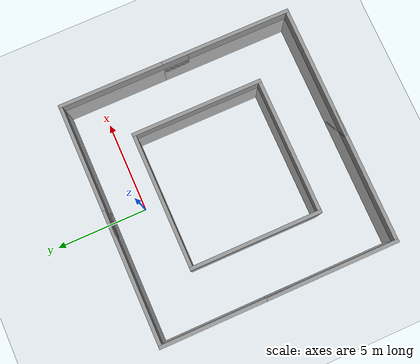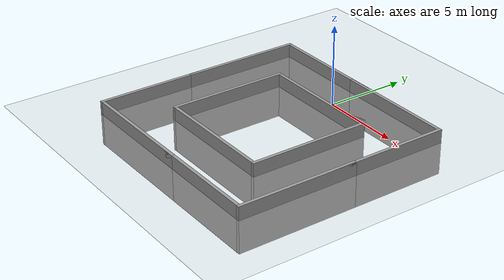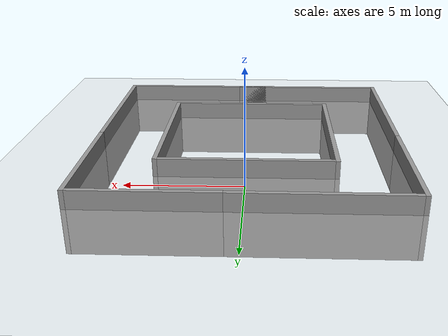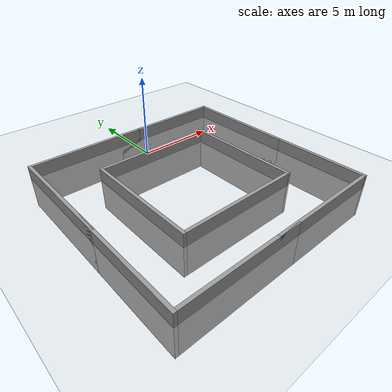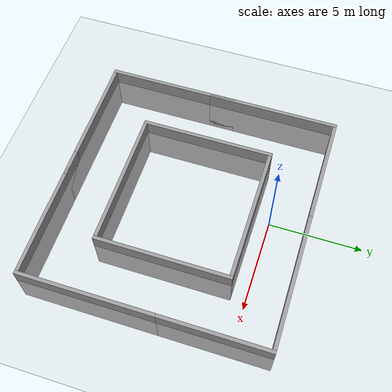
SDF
<?xml version="1.0" ?>
<sdf version='1.6'>
  <world name='corridor'>
    <physics type='ode'>
      <ode>
        <solver>
          <type>quick</type>
          <iters>1000</iters>
          <sor>1.3</sor>
        </solver>
        <constraints>
          <cfm>0</cfm>
          <erp>0.2</erp>
          <contact_max_correcting_vel>100</contact_max_correcting_vel>
          <contact_surface_layer>0.001</contact_surface_layer>
        </constraints>
      </ode>
      <max_step_size>0.01</max_step_size>
      <real_time_factor>1</real_time_factor>
      <real_time_update_rate>100</real_time_update_rate>
      <gravity>0 0 -9.8</gravity>
    </physics>

    <include>
      <uri>model://ground_plane</uri>
    </include>

    <include>
      <uri>model://sun</uri>
    </include>

    <include>
      <uri>model://grey_wall</uri>
      <pose>3 2 -2 0 0 0</pose>
    </include>

    <include>
      <uri>model://grey_wall</uri>
      <pose>0 -1 -2 0 0 0</pose>
    </include>

    <include>
      <uri>model://grey_wall</uri>
      <pose>6.85 -1.65 -2 0 0 1.57079632679</pose>
    </include>

    <include>
      <uri>model://grey_wall</uri>
      <pose>-6.85 -7.65 -2 0 0 1.57079632679</pose>
    </include>

    <include>
      <uri>model://grey_wall</uri>
      <pose>3.85 -4.65 -2 0 0 1.57079632679</pose>
    </include>

    <include>
      <uri>model://grey_wall</uri>
      <pose>0 -8.3 -2 0 0 0</pose>
    </include>

    <include>
      <uri>model://grey_wall</uri>
      <pose>3 -11.3 -2 0 0 0</pose>
    </include>

    <include>
      <uri>model://grey_wall</uri>
      <pose>6.85 -7.65 -2 0 0 1.57079632679</pose>
    </include>

    <include>
      <uri>model://grey_wall</uri>
      <pose>-3.85 -4.65 -2 0 0 1.57079632679</pose>
    </include>

    <include>
      <uri>model://grey_wall</uri>
      <pose>-6.85 -1.65 -2 0 0 1.57079632679</pose>
    </include>

    <include>
      <uri>model://grey_wall</uri>
      <pose>-3 2 -2 0 0 0</pose>
    </include>

    <include>
      <uri>model://grey_wall</uri>
      <pose>-3 -11.3 -2 0 0 0</pose>
    </include>

    <plugin name="occupancy_grid" filename="liboccupancy_grid.so" >
      <MapLength>14.0</MapLength>
      <MapWidth>14.0</MapWidth>
      <Resolution>0.1</Resolution>
      <OriginX>0.0</OriginX>
      <OriginY>-4.65</OriginY>
      <OriginZ>0.1</OriginZ>
      <ImagePath>/home/pavel/test.png</ImagePath>
    </plugin>
  </world>
</sdf>

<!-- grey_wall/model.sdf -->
<sdf version="1.5">
  <model name="grey_wall">
    <static>true</static>
    <link name="link">
      <pose>0 0 1.4 0 0 0</pose>
      <collision name="collision">
        <geometry>
          <box>
            <size>7.5 0.2 2.8</size>
          </box>
        </geometry>
      </collision>
      <visual name="visual">
        <cast_shadows>false</cast_shadows>
        <geometry>
          <box>
            <size>7.5 0.2 2.8</size>
          </box>
        </geometry>
        <material>
          <script>
            <uri>model://../model_source/models/grey_wall/materials/scripts</uri>
            <uri>model://../model_source/models/grey_wall/materials/textures</uri>
            <name>vrc/grey_wall</name>
          </script>
        </material>
      </visual>
    </link>
  </model>
</sdf>
